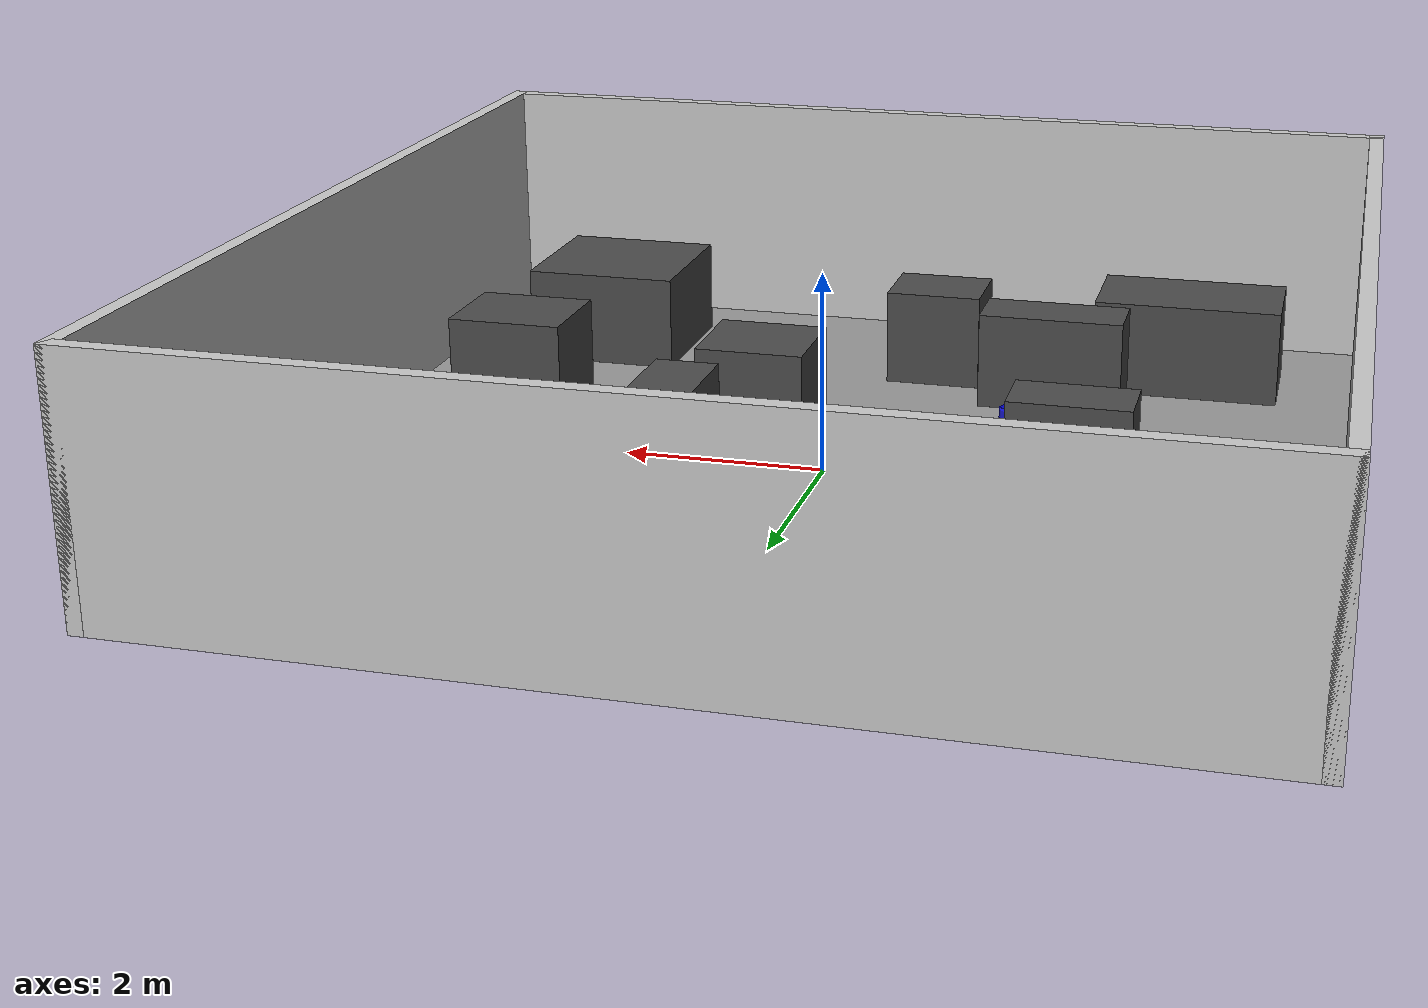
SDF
<?xml version="1.0" ?>
<sdf version="1.6">
  <world name="turtlebot3_custom_world">
    <gravity>0 0 -9.8</gravity>

    <!-- Sun & Ground -->
    <include><uri>model://sun</uri></include>
    <include><uri>model://ground_plane</uri></include>

    <!-- Ground -->
    <model name="ground_plane_custom">
      <static>true</static>
      <link name="link">
        <collision name="collision">
          <geometry><plane><normal>0 0 1</normal><size>10.0 10.0</size></plane></geometry>
        </collision>
        <visual name="visual">
          <geometry><plane><normal>0 0 1</normal><size>10.0 10.0</size></plane></geometry>
          <material>
            <script>
              <uri>file://media/materials/scripts/gazebo.material</uri>
              <name>Gazebo/Grey</name>
            </script>
          </material>
        </visual>
      </link>
      <pose>0 0 0 0 0 0</pose>
    </model>

    <!-- Walls -->
    <model name="wall_left">
      <static>true</static>
      <pose>-5 0 1.25 0 0 0</pose>
      <link name="link">
        <collision name="collision">
          <geometry><box><size>0.15 10.15 2.5</size></box></geometry>
        </collision>
        <visual name="visual">
          <geometry><box><size>0.15 10.15 2.5</size></box></geometry>
          <material><ambient>0.8 0.8 0.8 1</ambient></material>
        </visual>
      </link>
    </model>
    <model name="wall_right">
      <static>true</static>
      <pose>5 0 1.25 0 0 0</pose>
      <link name="link">
        <collision name="collision">
          <geometry><box><size>0.15 10.15 2.5</size></box></geometry>
        </collision>
        <visual name="visual">
          <geometry><box><size>0.15 10.15 2.5</size></box></geometry>
          <material><ambient>0.8 0.8 0.8 1</ambient></material>
        </visual>
      </link>
    </model>
    <model name="wall_top">
      <static>true</static>
      <pose>0 5 1.25 0 0 0</pose>
      <link name="link">
        <collision name="collision">
          <geometry><box><size>10.15 0.15 2.5</size></box></geometry>
        </collision>
        <visual name="visual">
          <geometry><box><size>10.15 0.15 2.5</size></box></geometry>
          <material><ambient>0.8 0.8 0.8 1</ambient></material>
        </visual>
      </link>
    </model>
    <model name="wall_bottom">
      <static>true</static>
      <pose>0 -5 1.25 0 0 0</pose>
      <link name="link">
        <collision name="collision">
          <geometry><box><size>10.15 0.15 2.5</size></box></geometry>
        </collision>
        <visual name="visual">
          <geometry><box><size>10.15 0.15 2.5</size></box></geometry>
          <material><ambient>0.8 0.8 0.8 1</ambient></material>
        </visual>
      </link>
    </model>

    <!-- Obstacles -->
    <model name="obstacle_0"><static>true</static><pose>-1.868 -2.537 0.5 0 0 0</pose><link name="link"><collision name="collision"><geometry><box><size>1.495 0.635 1.0</size></box></geometry></collision><visual name="visual"><geometry><box><size>1.495 0.635 1.0</size></box></geometry><material><ambient>0.3 0.3 0.3 1</ambient></material></visual></link></model>
    <model name="obstacle_1"><static>true</static><pose>3.204 -3.409 0.5 0 0 0</pose><link name="link"><collision name="collision"><geometry><box><size>1.631 1.547 1.0</size></box></geometry></collision><visual name="visual"><geometry><box><size>1.631 1.547 1.0</size></box></geometry><material><ambient>0.3 0.3 0.3 1</ambient></material></visual></link></model>
    <model name="obstacle_2"><static>true</static><pose>-2.422 0.049 0.5 0 0 0</pose><link name="link"><collision name="collision"><geometry><box><size>1.191 0.642 1.0</size></box></geometry></collision><visual name="visual"><geometry><box><size>1.191 0.642 1.0</size></box></geometry><material><ambient>0.3 0.3 0.3 1</ambient></material></visual></link></model>
    <model name="obstacle_3"><static>true</static><pose>1.373 0.401 0.5 0 0 0</pose><link name="link"><collision name="collision"><geometry><box><size>0.637 0.878 1.0</size></box></geometry></collision><visual name="visual"><geometry><box><size>0.637 0.878 1.0</size></box></geometry><material><ambient>0.3 0.3 0.3 1</ambient></material></visual></link></model>
    <model name="obstacle_4"><static>true</static><pose>-3.201 -3.520 0.5 0 0 0</pose><link name="link"><collision name="collision"><geometry><box><size>1.940 1.071 1.0</size></box></geometry></collision><visual name="visual"><geometry><box><size>1.940 1.071 1.0</size></box></geometry><material><ambient>0.3 0.3 0.3 1</ambient></material></visual></link></model>
    <model name="obstacle_5"><static>true</static><pose>2.461 1.919 0.5 0 0 0</pose><link name="link"><collision name="collision"><geometry><box><size>1.786 1.445 1.0</size></box></geometry></collision><visual name="visual"><geometry><box><size>1.786 1.445 1.0</size></box></geometry><material><ambient>0.3 0.3 0.3 1</ambient></material></visual></link></model>
    <model name="obstacle_6"><static>true</static><pose>0.873 -0.932 0.5 0 0 0</pose><link name="link"><collision name="collision"><geometry><box><size>1.1 1.0 1.0</size></box></geometry></collision><visual name="visual"><geometry><box><size>1.1 1.0 1.0</size></box></geometry><material><ambient>0.3 0.3 0.3 1</ambient></material></visual></link></model>
    <model name="obstacle_7"><static>true</static><pose>-0.521 -3.181 0.5 0 0 0</pose><link name="link"><collision name="collision"><geometry><box><size>1.0 0.8 1.0</size></box></geometry></collision><visual name="visual"><geometry><box><size>1.0 0.8 1.0</size></box></geometry><material><ambient>0.3 0.3 0.3 1</ambient></material></visual></link></model>
    <model name="obstacle_8"><static>true</static><pose>-1.238 2.710 0.5 0 0 0</pose><link name="link"><collision name="collision"><geometry><box><size>0.9 0.9 1.0</size></box></geometry></collision><visual name="visual"><geometry><box><size>0.9 0.9 1.0</size></box></geometry><material><ambient>0.3 0.3 0.3 1</ambient></material></visual></link></model>
    <model name="obstacle_9"><static>true</static><pose>3.587 -1.257 0.5 0 0 0</pose><link name="link"><collision name="collision"><geometry><box><size>1.2 1.0 1.0</size></box></geometry></collision><visual name="visual"><geometry><box><size>1.2 1.0 1.0</size></box></geometry><material><ambient>0.3 0.3 0.3 1</ambient></material></visual></link></model>

    <!-- Goal -->
    <model name="goal_region">
      <static>true</static>
      <pose>-2.428 3.720 0.025 0 0 0</pose>
      <link name="link">
        <visual name="visual">
          <geometry><cylinder><radius>0.800</radius><length>0.05</length></cylinder></geometry>
          <material><ambient>0 1 0 0.6</ambient><diffuse>0 1 0 0.6</diffuse></material>
        </visual>
      </link>
    </model>

    <!-- Start -->
    <model name="start_marker">
      <static>true</static>
      <pose>-1.550 -1.951 0.05 0 0 0</pose>
      <link name="link">
        <visual name="visual">
          <geometry><cylinder><radius>0.15</radius><length>0.1</length></cylinder></geometry>
          <material><ambient>0 0 1 0.8</ambient><diffuse>0 0 1 0.8</diffuse></material>
        </visual>
      </link>
    </model>

  </world>
</sdf>
